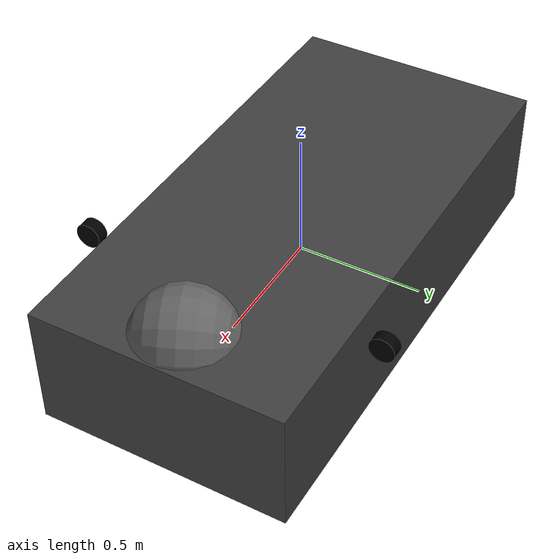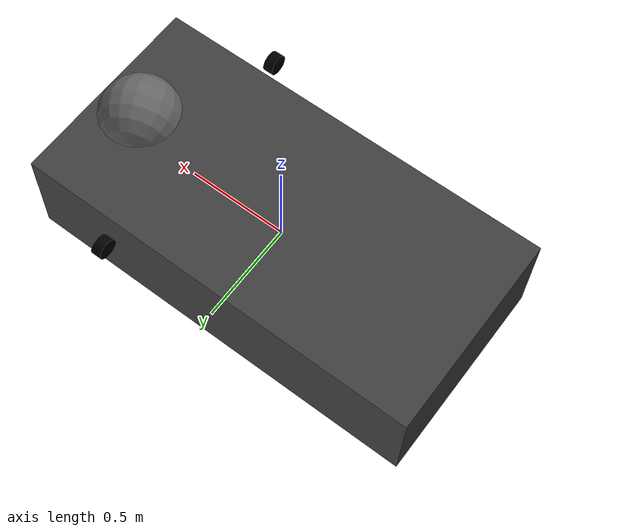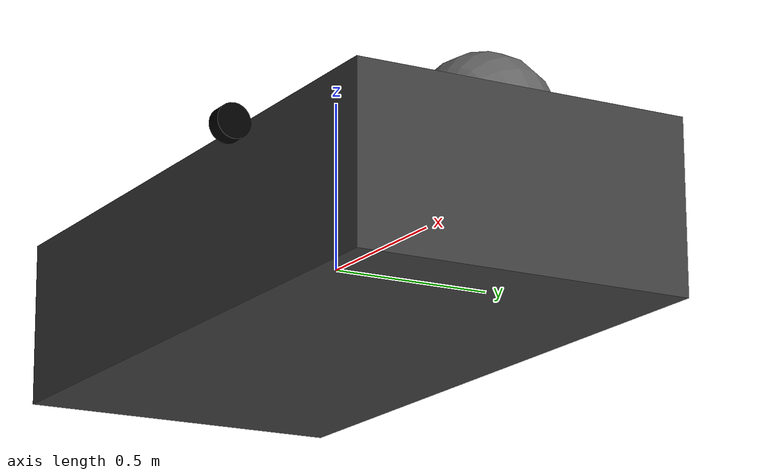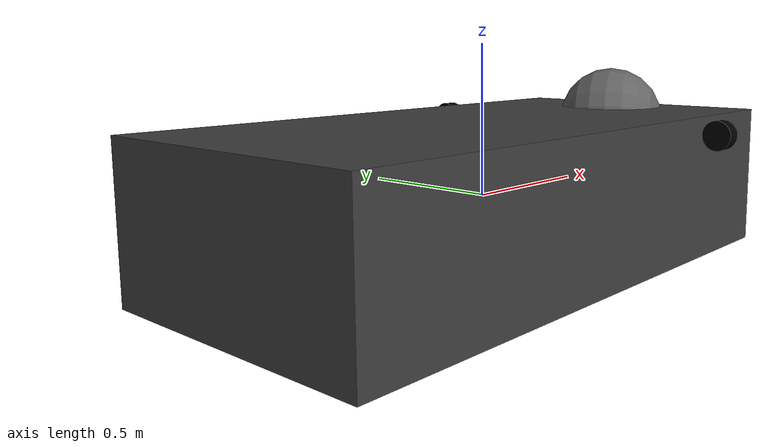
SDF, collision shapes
<?xml version="1.0"?>
<sdf version="1.7">
  <model name="carrinho_sdf">

    <!-- Frames auxiliares -->
    <frame name="caster_frame" attached_to="base_link">
      <pose>0.8 0 -0.2 0 0 0</pose>
    </frame>
    <frame name="lidar_frame" attached_to="base_link">
      <pose>0.8 0 0.5 0 0 0</pose>
    </frame>

    <!-- Chassi -->
    <link name="base_link">
       <pose relative_to="__model__">0 0 0 0 0 0 </pose>
      <inertial>
        <mass>1.14395</mass>
        <inertia>
          <ixx>0.095329</ixx><ixy>0</ixy><ixz>0</ixz>
          <iyy>0.381317</iyy><iyz>0</iyz><izz>0.476646</izz>
        </inertia>
      </inertial>

      <!--visual-->
      <visual name="visual">
        <pose>0 5.3 0 1.5708 0 0</pose>
        <geometry>
          <mesh>
            <uri>file:///home/larissa/Gemeo_digital_MJV/src/carrinho_sdf_pkg/models/carrinho_sdf/meshes/Chassi.STL</uri>
            <scale>0.005 0.005 0.005</scale>
          </mesh>
        </geometry>
        <material>
          <ambient>0.1 0.1 0.1 1</ambient>
          <diffuse>0.25 0.25 0.25 1</diffuse>
          <specular>0.1 0.1 0.1 1</specular>
        </material>
      </visual>

      <collision name="collision">
        <pose>0 0 0 0 0 0</pose>
        <geometry><box><size>2.0 1.0 0.5</size></box></geometry>
      </collision>

      <!-- IMU -->
      <sensor name="imu_sensor" type="imu">
        <always_on>1</always_on>
        <update_rate>50</update_rate>
        <visualize>false</visualize>
        <topic>/imu</topic>
      </sensor>
    </link>

    <!-- Câmera RGB -->
    <link name="camera">
    <!-- posicione a câmera  -->
    <visual name="visual">
      <geometry><box><size>0.1 0.1 0.1</size></box></geometry>
      <material>
          <ambient>1.0 0.0 0.0 1</ambient>
          <diffuse>1.0 0.0 0.0 1</diffuse>
          <specular>1.0 0.0 0.0 1</specular>
        </material></visual>
    <collision name="collision">
      <geometry><box><size>0.1 0.1 0.1</size></box></geometry>
    </collision>

    <sensor type="camera" name="camera_sensor">
      <always_on>1</always_on>
      <visualize>false</visualize>
      <topic>/camera/image_raw</topic>
      <update_rate>30.0</update_rate>
      <camera name="head">
        <horizontal_fov>1.3962634</horizontal_fov>
        <image><width>800</width><height>800</height><format>R8G8B8</format></image>
        <clip><near>0.02</near><far>300</far></clip>
        <noise><type>gaussian</type><mean>0.0</mean><stddev>0.007</stddev></noise>
      </camera>
    </sensor>
  </link>

    <joint name="camera_joint" type="fixed">
      <parent>base_link</parent>
      <child>camera</child>
      <pose>1 0 0 0 0 0</pose>
    </joint>

    <!-- Rodas -->
    <link name="roda_esquerda">
      <pose relative_to="base_link">0.5 0.6 0.2 0 1.5708 0</pose>
      <inertial>
        <mass>1</mass>
        <inertia><ixx>0.043333</ixx><iyy>0.043333</iyy><izz>0.08</izz></inertia>
      </inertial>

    <visual name="visual">
      <geometry>
        <mesh>
          <uri>file:///home/larissa/Gemeo_digital_MJV/src/carrinho_sdf_pkg/models/carrinho_sdf/meshes/Roda_Houverboard.STL</uri>
          <scale>0.005 0.005 0.005</scale>

        </mesh>
      </geometry>
      <material>
          <!-- Cor -->
          <ambient>0.05 0.05 0.05 1</ambient>
          <diffuse>0.0 0.0 0.0 1</diffuse>
          <specular>0.1 0.1 0.1 1</specular>

      </material>
    </visual>

    <collision name="collision">
      <geometry><cylinder><radius>0.05</radius><length>0.05</length></cylinder></geometry>
      <surface><friction><ode><mu>1.6</mu><mu2>1.6</mu2></ode></friction></surface>
    </collision>

  </link>

    <link name="roda_direita">
      <pose relative_to="base_link">0.5 -0.6 0.2 0 1.5708 0</pose>
      <inertial>
        <mass>1</mass>
        <inertia><ixx>0.043333</ixx><iyy>0.043333</iyy><izz>0.08</izz></inertia>
      </inertial>
      <visual name="visual">
        <geometry>
          <mesh>
            <uri>file:///home/larissa/Gemeo_digital_MJV/src/carrinho_sdf_pkg/models/carrinho_sdf/meshes/Roda_Houverboard.STL</uri>
            <scale>0.005 0.005 0.005</scale>

          </mesh>
        </geometry>
        <material>
          <ambient>0.05 0.05 0.05 1</ambient>
            <!-- Cor-->
            <ambient>0.05 0.05 0.05 1</ambient>
            <diffuse>0.0 0.0 0.0 1</diffuse>
            <specular>0.1 0.1 0.1 1</specular>
        </material>
      </visual>

      <collision name="collision">
        <geometry><cylinder><radius>0.05</radius><length>0.05</length></cylinder></geometry>
        <surface><friction><ode><mu>1.6</mu><mu2>1.6</mu2></ode></friction></surface>
      </collision>

    </link>

    <!--Juntas Rodas esquerda e direita-->
    <joint name="junta_roda_esquerda" type="revolute">
      <parent>base_link</parent>
      <child>roda_esquerda</child>
      <axis>
        <!-- eixo da roda ao longo de +Y do MODELO -->
        <xyz expressed_in="__model__">0 1 0</xyz>
        <use_parent_model_frame>0</use_parent_model_frame>
        <limit><lower>-1e16</lower><upper>1e16</upper></limit>
        <dynamics><damping>0.1</damping></dynamics>
      </axis>
    </joint>

    <joint name="junta_roda_direita" type="revolute">
      <parent>base_link</parent>
      <child>roda_direita</child>
      <axis>
        <xyz expressed_in="__model__">0 1 0</xyz>
        <use_parent_model_frame>0</use_parent_model_frame>
        <limit><lower>-1e16</lower><upper>1e16</upper></limit>
        <dynamics><damping>0.1</damping></dynamics>
      </axis>
    </joint>

    <!-- Roda Boba-->
    <link name="caster">
      <pose relative_to="base_link">0.8 0 0.2 1.5708 1.5708 3.568</pose>
      <inertial>
        <mass>0.5</mass>
        <inertia>
          <ixx>0.01</ixx><iyy>0.01</iyy><izz>0.01</izz>
        </inertia>
      </inertial>

      <visual name="visual">
        <geometry>
          <mesh>
            <uri>file:///home/larissa/Gemeo_digital_MJV/src/carrinho_sdf_pkg/models/carrinho_sdf/meshes/Roda_Boba.STL</uri>
            <scale>0.005 0.005 0.005</scale>

          </mesh>
        </geometry>
        <material>
          <ambient>0.2 0.2 0.2 1</ambient>
          <diffuse>0.4 0.4 0.4 1</diffuse>
          <specular>0.3 0.3 0.3 1</specular>
        </material>
      </visual>

      <collision name="collision">
        <geometry>
          <sphere><radius>0.2</radius></sphere>
        </geometry>
      </collision>
    </link>
<!--Junta Roda do boba-->
    <joint name="caster_wheel" type="ball">
      <parent>base_link</parent>
      <child>caster</child>
    </joint>

    <!-- Diff drive -->
    <plugin filename="libgz-sim-diff-drive-system.so" name="gz::sim::systems::DiffDrive">
      <left_joint>junta_roda_esquerda</left_joint>
      <right_joint>junta_roda_direita</right_joint>
      <wheel_separation>1.2</wheel_separation>
      <wheel_radius>0.05</wheel_radius>
      <odom_publish_frequency>10</odom_publish_frequency>
      <topic>/cmd_vel</topic>
      <odom_topic>/odom</odom_topic>
    </plugin>

  </model>
</sdf>
